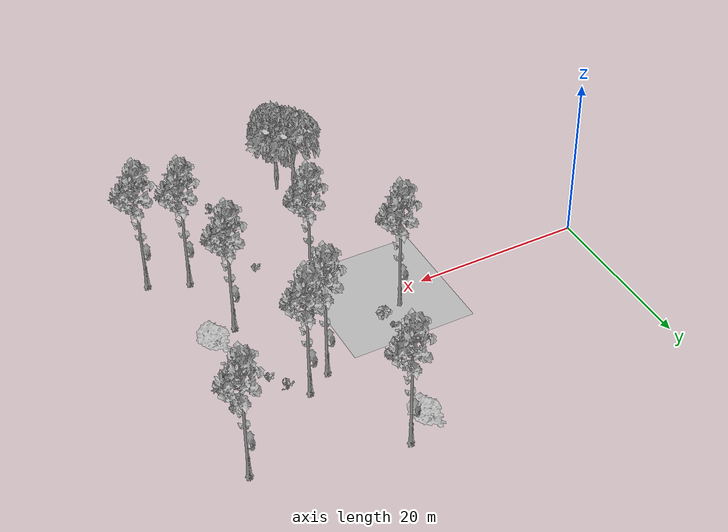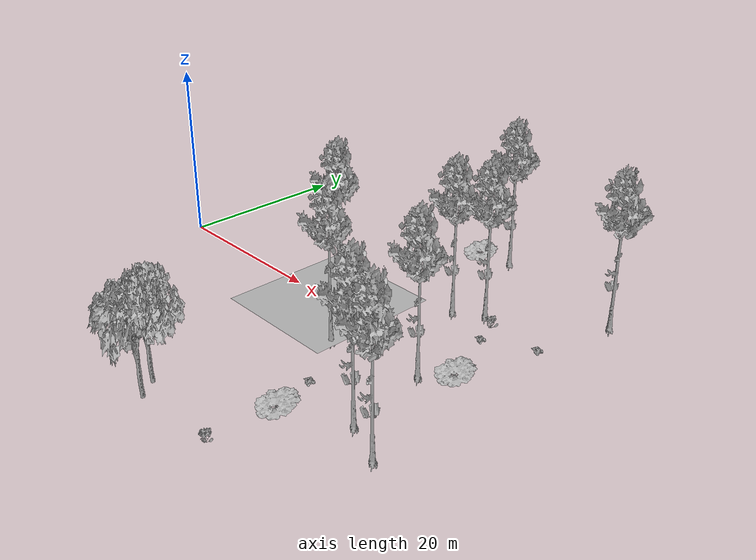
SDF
<sdf version="1.7">
 <world name="default">
  <model name="ground_plane">
   <static>1</static>
   <link name="link">
    <collision name="collision">
     <pose>25.0 0 0 0 -0 0</pose>
     <geometry><plane><normal>0 0 1</normal><size>50 50</size></plane></geometry>
     <surface><contact><ode><min_depth>0.01</min_depth><max_vel>0</max_vel></ode></contact></surface>
    </collision>
    <visual name="grass">
     <pose>25.0 0 0 0 -0 0</pose>
     <cast_shadows>0</cast_shadows>
     <geometry>
      <mesh>
       <scale>0.2731578947368421 0.2802702702702703 0.1</scale>
       <uri>file://grass_plane/meshes/grass_plane.dae</uri>
      </mesh>
     </geometry>
    </visual>
   </link>
  </model>
  <model name="Tree 1">
   <static>1</static>
   <pose>41.70439685531459 -3.173996922433279 0 1.57079 -0 0</pose>
   <link name="link">
    <collision name="collision">
     <geometry><mesh><scale>3.5 5 3.5</scale><uri>model://tree_9/meshes/tree_9.obj</uri></mesh></geometry>
    </collision>
    <visual name="visual">
     <geometry><mesh><scale>3.5 5 3.5</scale><uri>model://tree_9/meshes/tree_9.obj</uri></mesh></geometry>
    </visual>
   </link>
  </model>
  <model name="Tree 3">
   <static>1</static>
   <pose>29.954396855314595 19.04822529978894 0 1.57079 -0 0</pose>
   <link name="link">
    <collision name="collision">
     <geometry><mesh><scale>4 2.5 4</scale><uri>model://tree_1/meshes/tree_1.obj</uri></mesh></geometry>
    </collision>
    <visual name="visual">
     <geometry><mesh><scale>4 2.5 4</scale><uri>model://tree_1/meshes/tree_1.obj</uri></mesh></geometry>
    </visual>
   </link>
  </model>
  <model name="Tree 4">
   <static>1</static>
   <pose>24.079396855314595 2.3815586331222782 0 1.57079 -0 0</pose>
   <link name="link">
    <collision name="collision">
     <geometry><mesh><scale>3.5 5 3.5</scale><uri>model://tree_9/meshes/tree_9.obj</uri></mesh></geometry>
    </collision>
    <visual name="visual">
     <geometry><mesh><scale>3.5 5 3.5</scale><uri>model://tree_9/meshes/tree_9.obj</uri></mesh></geometry>
    </visual>
   </link>
  </model>
  <model name="Tree 5">
   <static>1</static>
   <pose>47.57939685531459 -14.285108033544388 0 1.57079 -0 0</pose>
   <link name="link">
    <collision name="collision">
     <geometry><mesh><scale>3.5 5 3.5</scale><uri>model://tree_9/meshes/tree_9.obj</uri></mesh></geometry>
    </collision>
    <visual name="visual">
     <geometry><mesh><scale>3.5 5 3.5</scale><uri>model://tree_9/meshes/tree_9.obj</uri></mesh></geometry>
    </visual>
   </link>
  </model>
  <model name="Tree 7">
   <static>1</static>
   <pose>35.82939685531459 7.937114188677832 0 1.57079 -0 0</pose>
   <link name="link">
    <collision name="collision">
     <geometry><mesh><scale>3.5 5 3.5</scale><uri>model://tree_9/meshes/tree_9.obj</uri></mesh></geometry>
    </collision>
    <visual name="visual">
     <geometry><mesh><scale>3.5 5 3.5</scale><uri>model://tree_9/meshes/tree_9.obj</uri></mesh></geometry>
    </visual>
   </link>
  </model>
  <model name="Tree 9">
   <static>1</static>
   <pose>38.76689685531459 9.788966040529687 0 1.57079 -0 0</pose>
   <link name="link">
    <collision name="collision">
     <geometry><mesh><scale>3.5 5 3.5</scale><uri>model://tree_9/meshes/tree_9.obj</uri></mesh></geometry>
    </collision>
    <visual name="visual">
     <geometry><mesh><scale>3.5 5 3.5</scale><uri>model://tree_9/meshes/tree_9.obj</uri></mesh></geometry>
    </visual>
   </link>
  </model>
  <model name="Tree 11">
   <static>1</static>
   <pose>27.016896855314595 -23.544367292803646 0 1.57079 -0 0</pose>
   <link name="link">
    <collision name="collision">
     <geometry><mesh><scale>3.5 5 3.5</scale><uri>model://tree_2/meshes/tree_2.obj</uri></mesh></geometry>
    </collision>
    <visual name="visual">
     <geometry><mesh><scale>3.5 5 3.5</scale><uri>model://tree_2/meshes/tree_2.obj</uri></mesh></geometry>
    </visual>
   </link>
  </model>
  <model name="Tree 13">
   <static>1</static>
   <pose>44.64189685531459 -1.3221450705814277 0 1.57079 -0 0</pose>
   <link name="link">
    <collision name="collision">
     <geometry><mesh><scale>4 2.5 4</scale><uri>model://tree_1/meshes/tree_1.obj</uri></mesh></geometry>
    </collision>
    <visual name="visual">
     <geometry><mesh><scale>4 2.5 4</scale><uri>model://tree_1/meshes/tree_1.obj</uri></mesh></geometry>
    </visual>
   </link>
  </model>
  <model name="Tree 15">
   <static>1</static>
   <pose>32.8918968553146 20.900077151640794 0 1.57079 -0 0</pose>
   <link name="link">
    <collision name="collision">
     <geometry><mesh><scale>3.5 5 3.5</scale><uri>model://tree_9/meshes/tree_9.obj</uri></mesh></geometry>
    </collision>
    <visual name="visual">
     <geometry><mesh><scale>3.5 5 3.5</scale><uri>model://tree_9/meshes/tree_9.obj</uri></mesh></geometry>
    </visual>
   </link>
  </model>
  <model name="Tree 17">
   <static>1</static>
   <pose>43.17314685531459 -12.433256181692537 0 1.57079 -0 0</pose>
   <link name="link">
    <collision name="collision">
     <geometry><mesh><scale>3.5 5 3.5</scale><uri>model://tree_9/meshes/tree_9.obj</uri></mesh></geometry>
    </collision>
    <visual name="visual">
     <geometry><mesh><scale>3.5 5 3.5</scale><uri>model://tree_9/meshes/tree_9.obj</uri></mesh></geometry>
    </visual>
   </link>
  </model>
  <model name="Tree 19">
   <static>1</static>
   <pose>31.423146855314595 -5.02584877428513 0 1.57079 -0 0</pose>
   <link name="link">
    <collision name="collision">
     <geometry><mesh><scale>3.5 5 3.5</scale><uri>model://tree_9/meshes/tree_9.obj</uri></mesh></geometry>
    </collision>
    <visual name="visual">
     <geometry><mesh><scale>3.5 5 3.5</scale><uri>model://tree_9/meshes/tree_9.obj</uri></mesh></geometry>
    </visual>
   </link>
  </model>
  <model name="Tree 20">
   <static>1</static>
   <pose>25.548146855314595 -21.692515440951794 0 1.57079 -0 0</pose>
   <link name="link">
    <collision name="collision">
     <geometry><mesh><scale>3.5 5 3.5</scale><uri>model://tree_2/meshes/tree_2.obj</uri></mesh></geometry>
    </collision>
    <visual name="visual">
     <geometry><mesh><scale>3.5 5 3.5</scale><uri>model://tree_2/meshes/tree_2.obj</uri></mesh></geometry>
    </visual>
   </link>
  </model>
  <model name="Tree 21">
   <static>1</static>
   <pose>49.04814685531459 17.196373447937084 0 1.57079 -0 0</pose>
   <link name="link">
    <collision name="collision">
     <geometry><mesh><scale>3.5 5 3.5</scale><uri>model://tree_9/meshes/tree_9.obj</uri></mesh></geometry>
    </collision>
    <visual name="visual">
     <geometry><mesh><scale>3.5 5 3.5</scale><uri>model://tree_9/meshes/tree_9.obj</uri></mesh></geometry>
    </visual>
   </link>
  </model>
  <model name="Tree 23">
   <static>1</static>
   <pose>37.29814685531459 -16.136959885396237 0 1.57079 -0 0</pose>
   <link name="link">
    <collision name="collision">
     <geometry><mesh><scale>4 2.5 4</scale><uri>model://tree_1/meshes/tree_1.obj</uri></mesh></geometry>
    </collision>
    <visual name="visual">
     <geometry><mesh><scale>4 2.5 4</scale><uri>model://tree_1/meshes/tree_1.obj</uri></mesh></geometry>
    </visual>
   </link>
  </model>
  <model name="Bush 0">
   <static>1</static>
   <pose>26.104077545353153 5.009640834300722 0 1.57079 -0 0</pose>
   <link name="link">
    <collision name="collision">
     <geometry><mesh><scale>2 2 2</scale><uri>model://bush_2/meshes/bush_2.obj</uri></mesh></geometry>
     <surface><contact><collide_without_contact>false</collide_without_contact></contact></surface>
    </collision>
    <visual name="visual">
     <geometry><mesh><scale>2 2 2</scale><uri>model://bush_2/meshes/bush_2.obj</uri></mesh></geometry>
    </visual>
   </link>
  </model>
  <model name="Bush 1">
   <static>1</static>
   <pose>40.68638321030617 8.308786606371093 0 1.57079 -0 0</pose>
   <link name="link">
    <collision name="collision">
     <geometry><mesh><scale>2 2 2</scale><uri>model://bush_4/meshes/bush_4.obj</uri></mesh></geometry>
     <surface><contact><collide_without_contact>false</collide_without_contact></contact></surface>
    </collision>
    <visual name="visual">
     <geometry><mesh><scale>2 2 2</scale><uri>model://bush_4/meshes/bush_4.obj</uri></mesh></geometry>
    </visual>
   </link>
  </model>
  <model name="Bush 9">
   <static>1</static>
   <pose>36.246473042323544 -22.93556936944795 0 1.57079 -0 0</pose>
   <link name="link">
    <collision name="collision">
     <geometry><mesh><scale>2 2 2</scale><uri>model://bush_4/meshes/bush_4.obj</uri></mesh></geometry>
     <surface><contact><collide_without_contact>false</collide_without_contact></contact></surface>
    </collision>
    <visual name="visual">
     <geometry><mesh><scale>2 2 2</scale><uri>model://bush_4/meshes/bush_4.obj</uri></mesh></geometry>
    </visual>
   </link>
  </model>
  <model name="Bush 10">
   <static>1</static>
   <pose>33.482209889291305 -0.48941903452429614 0 1.57079 -0 0</pose>
   <link name="link">
    <collision name="collision">
     <geometry><mesh><scale>2 2 2</scale><uri>model://bush_4/meshes/bush_4.obj</uri></mesh></geometry>
     <surface><contact><collide_without_contact>false</collide_without_contact></contact></surface>
    </collision>
    <visual name="visual">
     <geometry><mesh><scale>2 2 2</scale><uri>model://bush_4/meshes/bush_4.obj</uri></mesh></geometry>
    </visual>
   </link>
  </model>
  <model name="Bush 12">
   <static>1</static>
   <pose>41.602666437514024 5.759713600175019 0 1.57079 -0 0</pose>
   <link name="link">
    <collision name="collision">
     <geometry><mesh><scale>2 2 2</scale><uri>model://bush_2/meshes/bush_2.obj</uri></mesh></geometry>
     <surface><contact><collide_without_contact>false</collide_without_contact></contact></surface>
    </collision>
    <visual name="visual">
     <geometry><mesh><scale>2 2 2</scale><uri>model://bush_2/meshes/bush_2.obj</uri></mesh></geometry>
    </visual>
   </link>
  </model>
  <model name="Bush 13">
   <static>1</static>
   <pose>35.52698367516537 -11.170183536862039 0 1.57079 -0 0</pose>
   <link name="link">
    <collision name="collision">
     <geometry><mesh><scale>2 2 2</scale><uri>model://bush_2/meshes/bush_2.obj</uri></mesh></geometry>
     <surface><contact><collide_without_contact>false</collide_without_contact></contact></surface>
    </collision>
    <visual name="visual">
     <geometry><mesh><scale>2 2 2</scale><uri>model://bush_2/meshes/bush_2.obj</uri></mesh></geometry>
    </visual>
   </link>
  </model>
  <model name="Bush 15">
   <static>1</static>
   <pose>46.75356366243214 8.264433885881253 0 1.57079 -0 0</pose>
   <link name="link">
    <collision name="collision">
     <geometry><mesh><scale>2 2 2</scale><uri>model://bush_2/meshes/bush_2.obj</uri></mesh></geometry>
     <surface><contact><collide_without_contact>false</collide_without_contact></contact></surface>
    </collision>
    <visual name="visual">
     <geometry><mesh><scale>2 2 2</scale><uri>model://bush_2/meshes/bush_2.obj</uri></mesh></geometry>
    </visual>
   </link>
  </model>
  <model name="Bush 17">
   <static>1</static>
   <pose>26.739058781554025 3.3882153923252325 0 1.57079 -0 0</pose>
   <link name="link">
    <collision name="collision">
     <geometry><mesh><scale>2 2 2</scale><uri>model://bush_1/meshes/bush_1.obj</uri></mesh></geometry>
     <surface><contact><collide_without_contact>false</collide_without_contact></contact></surface>
    </collision>
    <visual name="visual">
     <geometry><mesh><scale>2 2 2</scale><uri>model://bush_1/meshes/bush_1.obj</uri></mesh></geometry>
    </visual>
   </link>
  </model>
 </world>
</sdf>
